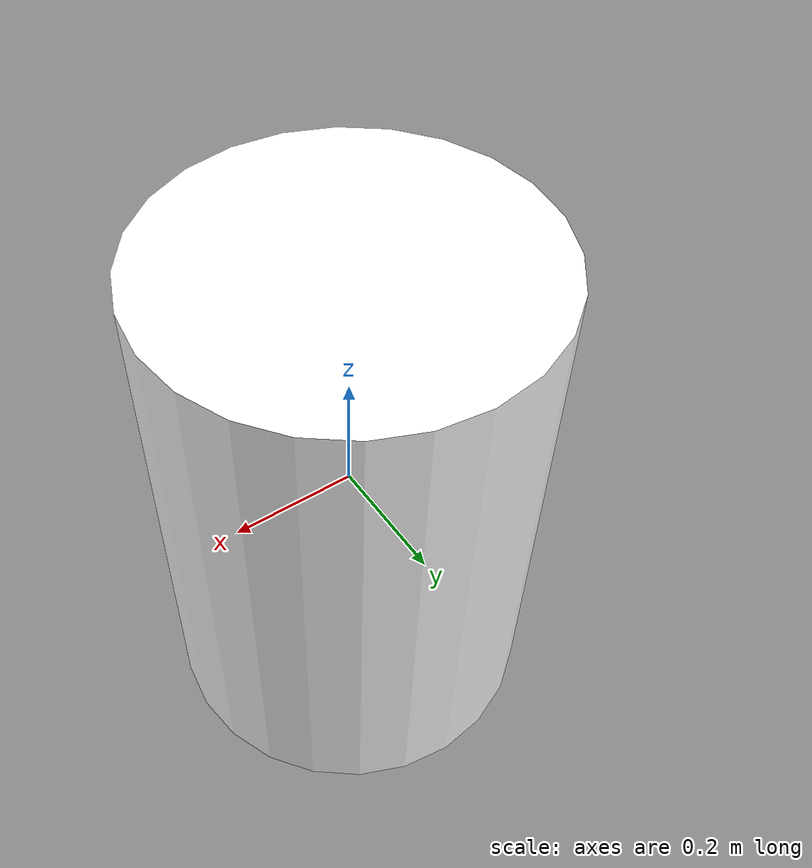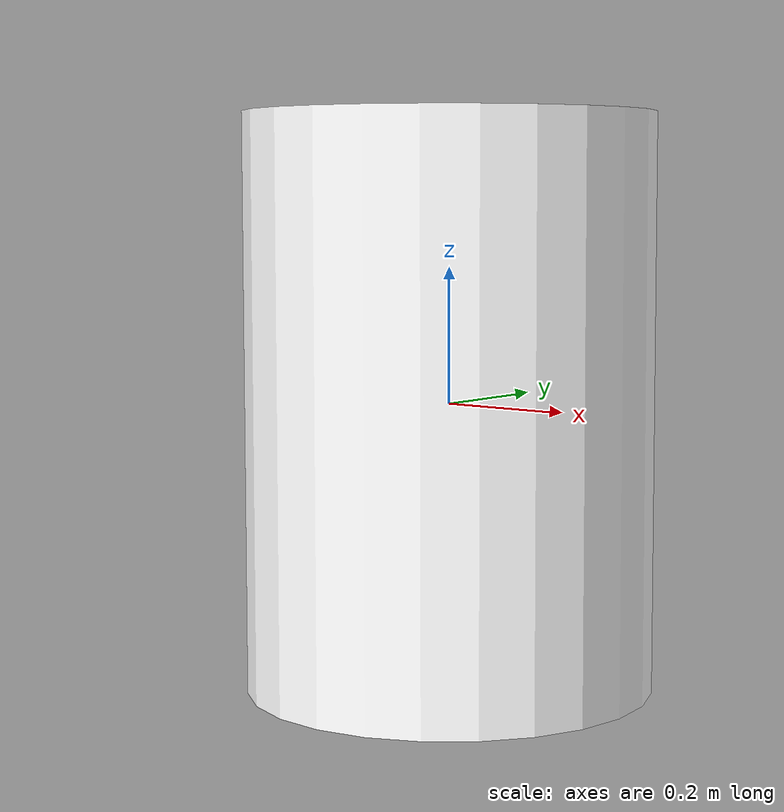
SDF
<?xml version="1.0"?>
<!-- Textured metal barrel (radius 0.3, height 0.85). Geometry centred on the
     link origin; include with z = 0.425 so it rests on the floor. -->
<sdf version="1.7">
  <model name="barrel">
    <static>true</static>
    <link name="link">
      <collision name="collision">
        <geometry>
          <cylinder><radius>0.3</radius><length>0.85</length></cylinder>
        </geometry>
      </collision>
      <visual name="visual">
        <geometry>
          <cylinder><radius>0.3</radius><length>0.85</length></cylinder>
        </geometry>
        <material>
          <ambient>1 1 1 1</ambient>
          <diffuse>1 1 1 1</diffuse>
          <specular>0.3 0.3 0.3 1</specular>
          <pbr>
            <metal>
              <albedo_map>model://barrel/materials/textures/barrel.png</albedo_map>
              <roughness>0.4</roughness>
              <metalness>0.6</metalness>
            </metal>
          </pbr>
        </material>
      </visual>
    </link>
  </model>
</sdf>
